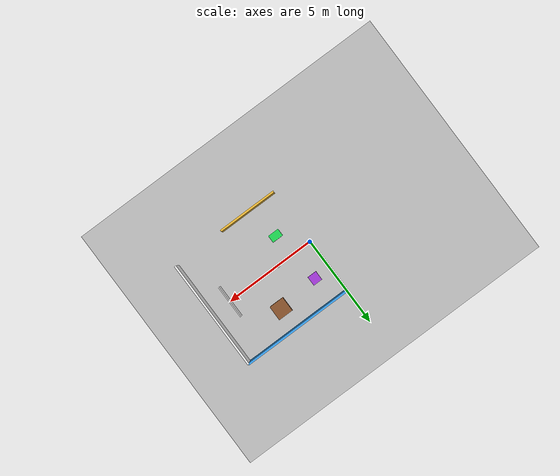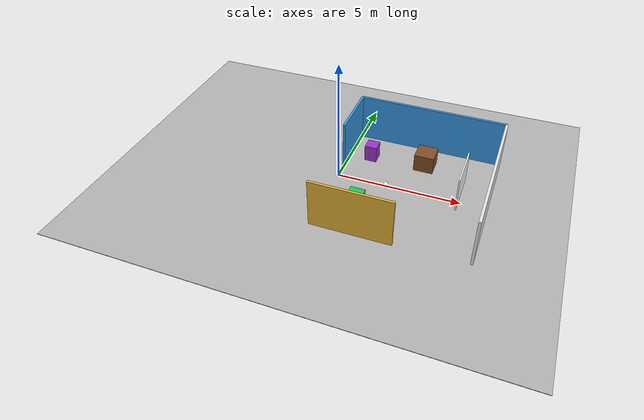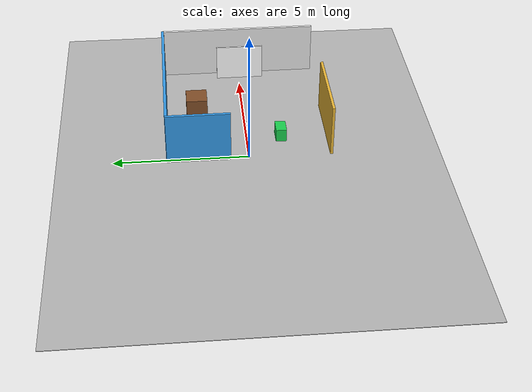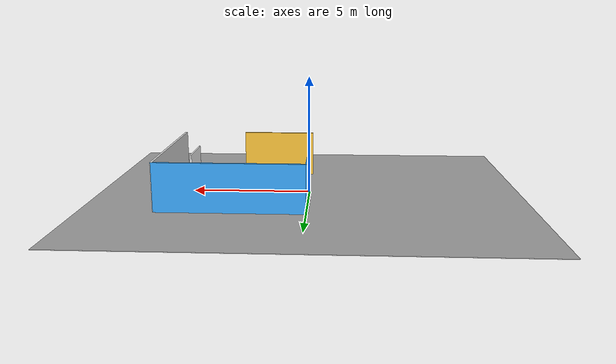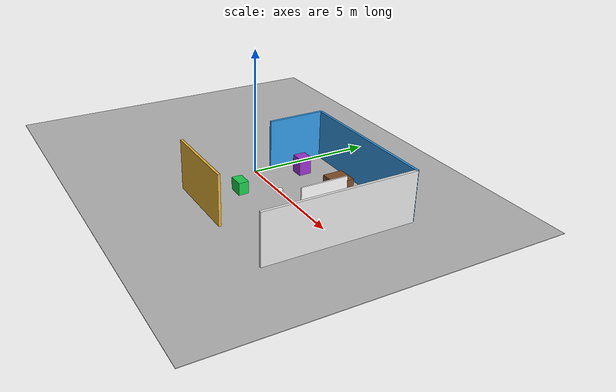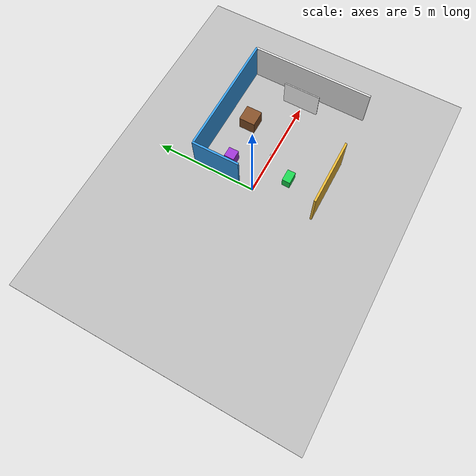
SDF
<sdf version="1.7">
 <world name="simple_arm_test_world">
  <gravity>0 0 -9.8</gravity>
  <light name="sun" type="directional">
   <pose>0 0 10 0 -0 0</pose>
   <diffuse>0.8 0.8 0.8 1</diffuse>
   <specular>0.2 0.2 0.2 1</specular>
   <attenuation>
    <range>1000</range>
    <constant>0.9</constant>
    <linear>0.01</linear>
    <quadratic>0.001</quadratic>
   </attenuation>
   <direction>-0.5 0.1 -0.9</direction>
   <spot><inner_angle>0</inner_angle><outer_angle>0</outer_angle><falloff>0</falloff></spot>
  </light>
  <model name="white_ball">
   <static>false</static>
   <pose>2.0 0 0.1 0 0 0</pose>
   <link name="ball_link">
    <inertial>
     <mass>0.25</mass>
     <inertia><ixx>0.001</ixx><ixy>0.0</ixy><ixz>0.0</ixz><iyy>0.001</iyy><iyz>0.0</iyz><izz>0.001</izz></inertia>
    </inertial>
    <collision name="ball_collision"><geometry><sphere><radius>0.1</radius></sphere></geometry></collision>
    <visual name="ball_visual">
     <geometry><sphere><radius>0.1</radius></sphere></geometry>
     <material>
      <ambient>1 1 1 1</ambient>
      <diffuse>1 1 1 1</diffuse>
      <specular>1 1 1 1</specular>
      <emissive>0.7 0.7 0.7 1</emissive>
     </material>
    </visual>
   </link>
  </model>
  <model name="floor_box">
   <static>1</static>
   <pose>0 0 -0.01 0 -0 0</pose>
   <link name="link">
    <collision name="collision"><geometry><box><size>18.0482 14.1335 0.02</size></box></geometry></collision>
    <visual name="visual">
     <geometry><box><size>18.0482 14.1335 0.02</size></box></geometry>
     <material><ambient>0.7 0.7 0.7 1</ambient><diffuse>0.7 0.7 0.7 1</diffuse></material>
    </visual>
   </link>
  </model>
  <model name="back_wall">
   <static>1</static>
   <pose>6 0 1 0 -0 0</pose>
   <link name="link">
    <collision name="collision"><geometry><box><size>0.1 6 2</size></box></geometry></collision>
    <visual name="visual">
     <geometry><box><size>0.1 6 2</size></box></geometry>
     <material><ambient>0.9 0.9 0.9 1</ambient><diffuse>0.9 0.9 0.9 1</diffuse></material>
    </visual>
   </link>
  </model>
  <model name="left_wall">
   <static>1</static>
   <pose>3.01235 3 1 0 -0 0</pose>
   <link name="link">
    <collision name="collision"><geometry><box><size>6 0.1 2</size></box></geometry></collision>
    <visual name="visual">
     <geometry><box><size>6 0.1 2</size></box></geometry>
     <material><ambient>0.2 0.6 0.9 1</ambient><diffuse>0.2 0.6 0.9 1</diffuse></material>
    </visual>
   </link>
  </model>
  <model name="right_wall">
   <static>1</static>
   <pose>1.56879 -3.04264 1 0 -0 0</pose>
   <link name="link">
    <collision name="collision"><geometry><box><size>3.22161 0.1 2</size></box></geometry></collision>
    <visual name="visual">
     <geometry><box><size>3.22161 0.1 2</size></box></geometry>
     <material><ambient>0.9 0.7 0.2 1</ambient><diffuse>0.9 0.7 0.2 1</diffuse></material>
    </visual>
   </link>
  </model>
  <model name="white_panel">
   <static>1</static>
   <pose>4.92616 0 1.1 0 -0 0</pose>
   <link name="link">
    <collision name="collision"><geometry><box><size>0.05 1.8 1.4</size></box></geometry></collision>
    <visual name="visual">
     <geometry><box><size>0.05 1.8 1.4</size></box></geometry>
     <material><ambient>1 1 1 1</ambient><diffuse>1 1 1 1</diffuse><specular>0.8 0.8 0.8 1</specular></material>
    </visual>
   </link>
  </model>
  <model name="purple_box">
   <static>1</static>
   <pose>0.9 1.60055 0.35 0 -0 0</pose>
   <link name="link">
    <collision name="collision"><geometry><box><size>0.5 0.5 0.7</size></box></geometry></collision>
    <visual name="visual">
     <geometry><box><size>0.5 0.5 0.7</size></box></geometry>
     <material><ambient>0.6 0.2 0.8 1</ambient><diffuse>0.6 0.2 0.8 1</diffuse></material>
    </visual>
   </link>
  </model>
  <model name="green_box">
   <static>1</static>
   <pose>1.2 -1.27372 0.25 0 -0 0</pose>
   <link name="link">
    <collision name="collision"><geometry><box><size>0.6 0.4 0.5</size></box></geometry></collision>
    <visual name="visual">
     <geometry><box><size>0.6 0.4 0.5</size></box></geometry>
     <material><ambient>0.1 0.8 0.3 1</ambient><diffuse>0.1 0.8 0.3 1</diffuse></material>
    </visual>
   </link>
  </model>
  <model name="table_block">
   <static>1</static>
   <pose>3.14664 1.8 0.33984 0 -0 0</pose>
   <link name="link">
    <collision name="collision"><geometry><box><size>0.8 0.8 0.8</size></box></geometry></collision>
    <visual name="visual">
     <geometry><box><size>0.8 0.8 0.8</size></box></geometry>
     <material><ambient>0.5 0.3 0.15 1</ambient><diffuse>0.5 0.3 0.15 1</diffuse></material>
    </visual>
   </link>
  </model>
  <magnetic_field>6e-06 2.3e-05 -4.2e-05</magnetic_field>
  <atmosphere type="adiabatic"/>
  <physics type="ode">
   <max_step_size>0.001</max_step_size>
   <real_time_factor>1</real_time_factor>
   <real_time_update_rate>1000</real_time_update_rate>
  </physics>
  <scene><ambient>0.4 0.4 0.4 1</ambient><background>0.7 0.7 0.7 1</background><shadows>1</shadows></scene>
  <audio><device>default</device></audio>
  <spherical_coordinates>
   <surface_model>EARTH_WGS84</surface_model>
   <latitude_deg>0</latitude_deg>
   <longitude_deg>0</longitude_deg>
   <elevation>0</elevation>
   <heading_deg>0</heading_deg>
  </spherical_coordinates>
  <model name="left_wall_clone">
   <static>1</static>
   <pose>-0.032644 1.85853 1 0 0 -1.5682</pose>
   <link name="link">
    <collision name="collision"><geometry><box><size>2.35086 0.1 2</size></box></geometry></collision>
    <visual name="visual">
     <geometry><box><size>2.35086 0.1 2</size></box></geometry>
     <material><ambient>0.2 0.6 0.9 1</ambient><diffuse>0.2 0.6 0.9 1</diffuse></material>
    </visual>
   </link>
  </model>
 </world>
</sdf>
